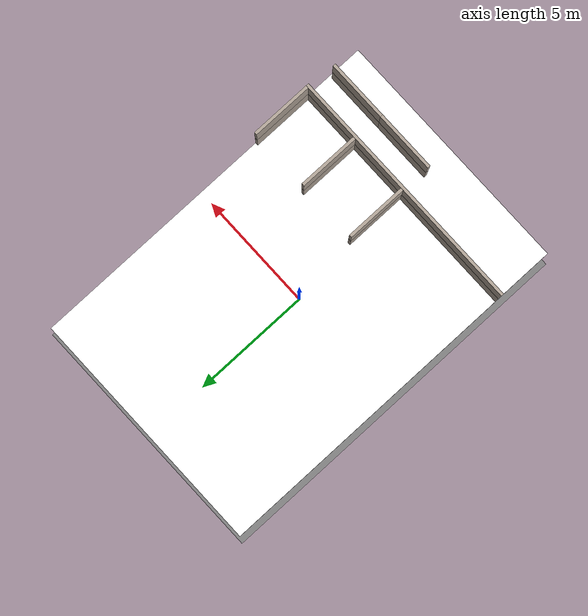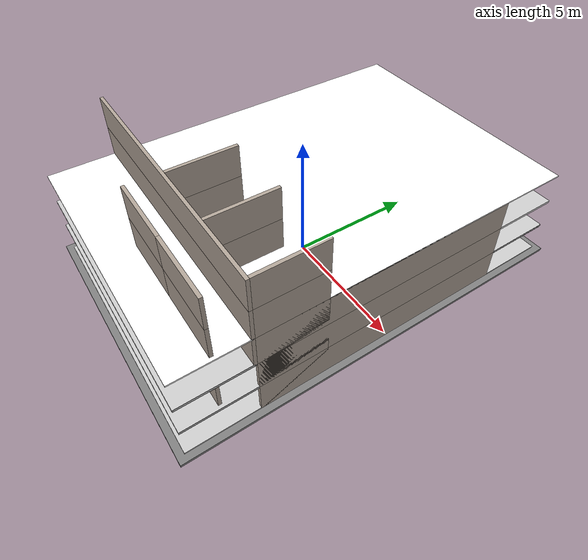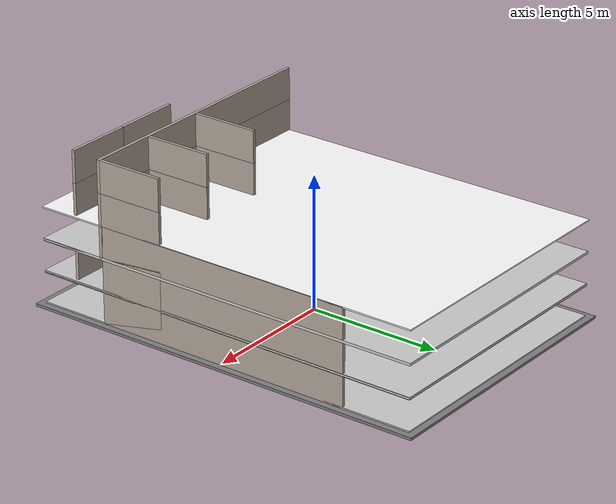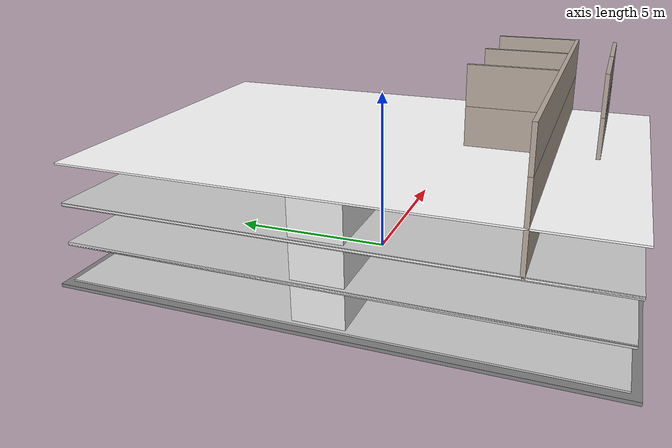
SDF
<sdf version="1.7">
 <model name="HotelBuilding">
  <static>true</static>
  <link name="building_base">
   <pose>0 0 -0.05 0 0 0</pose>
   <visual name="visual">
    <geometry><box><size>10.74 15.74 0.1</size></box></geometry>
    <material><ambient>0.4 0.4 0.4 1</ambient><diffuse>0.5 0.5 0.5 1</diffuse></material>
   </visual>
   <collision name="collision"><geometry><box><size>10.74 15.74 0.1</size></box></geometry></collision>
  </link>
  <link name="floor_base_f0">
   <visual name="visual">
    <geometry><box><size>10.24 15.24 0.1</size></box></geometry>
    <material><ambient>0.7 0.7 0.7 1</ambient><diffuse>0.8 0.8 0.8 1</diffuse></material>
   </visual>
   <collision name="collision">
    <geometry><box><size>10.24 15.24 0.1</size></box></geometry>
    <surface><friction><ode><mu>1.0</mu><mu2>1.0</mu2></ode></friction></surface>
   </collision>
  </link>
  <link name="corridor_f0">
   <pose>0 0 0.6 0 0 0</pose>
   <visual name="visual">
    <geometry><box><size>10.0 1.5 1.2</size></box></geometry>
    <material><ambient>0.85 0.85 0.85 1</ambient><diffuse>0.9 0.9 0.9 1</diffuse></material>
   </visual>
   <collision name="collision">
    <geometry><box><size>10.0 1.5 1.2</size></box></geometry>
    <surface><friction><ode><mu>1.0</mu><mu2>1.0</mu2></ode></friction></surface>
   </collision>
  </link>
  <link name="room_divider_f0_r1">
   <pose>0.06 -3.75 0.6 0 0 0</pose>
   <visual name="visual">
    <geometry><box><size>0.12 2.5 1.2</size></box></geometry>
    <material><ambient>0.6 0.55 0.5 1</ambient><diffuse>0.7 0.65 0.6 1</diffuse></material>
   </visual>
   <collision name="collision"><geometry><box><size>0.12 2.5 1.2</size></box></geometry></collision>
  </link>
  <link name="room_rear_wall_f0_r2">
   <pose>1.25 -6.25 0.6 0 0 0</pose>
   <visual name="visual">
    <geometry><box><size>2.5 0.12 1.2</size></box></geometry>
    <material><ambient>0.6 0.55 0.5 1</ambient><diffuse>0.7 0.65 0.6 1</diffuse></material>
   </visual>
   <collision name="collision"><geometry><box><size>2.5 0.12 1.2</size></box></geometry></collision>
  </link>
  <link name="room_side_wall_f0_r2_right">
   <pose>5.0600000000000005 -3.75 0.6 0 0 0</pose>
   <visual name="visual">
    <geometry><box><size>0.12 2.5 1.2</size></box></geometry>
    <material><ambient>0.6 0.55 0.5 1</ambient><diffuse>0.7 0.65 0.6 1</diffuse></material>
   </visual>
   <collision name="collision"><geometry><box><size>0.12 2.5 1.2</size></box></geometry></collision>
  </link>
  <link name="corridor_right_wall_f0">
   <pose>5.0600000000000005 0 0.6 0 0 0</pose>
   <visual name="visual">
    <geometry><box><size>0.12 10.0 1.2</size></box></geometry>
    <material><ambient>0.6 0.55 0.5 1</ambient><diffuse>0.7 0.65 0.6 1</diffuse></material>
   </visual>
   <collision name="collision"><geometry><box><size>0.12 10.0 1.2</size></box></geometry></collision>
  </link>
  <link name="ceiling_f0">
   <pose>0 0 1.2 0 0 0</pose>
   <visual name="visual">
    <geometry><box><size>10.24 15.24 0.05</size></box></geometry>
    <material><ambient>0.9 0.9 0.9 1</ambient><diffuse>1.0 1.0 1.0 1</diffuse></material>
   </visual>
   <collision name="collision"><geometry><box><size>10.24 15.24 0.05</size></box></geometry></collision>
  </link>
  <link name="floor_base_f1">
   <pose>0 0 1.2 0 0 0</pose>
   <visual name="visual">
    <geometry><box><size>10.24 15.24 0.1</size></box></geometry>
    <material><ambient>0.7 0.7 0.7 1</ambient><diffuse>0.8 0.8 0.8 1</diffuse></material>
   </visual>
   <collision name="collision">
    <geometry><box><size>10.24 15.24 0.1</size></box></geometry>
    <surface><friction><ode><mu>1.0</mu><mu2>1.0</mu2></ode></friction></surface>
   </collision>
  </link>
  <link name="corridor_f1">
   <pose>0 0 1.7999999999999998 0 0 0</pose>
   <visual name="visual">
    <geometry><box><size>10.0 1.5 1.2</size></box></geometry>
    <material><ambient>0.85 0.85 0.85 1</ambient><diffuse>0.9 0.9 0.9 1</diffuse></material>
   </visual>
   <collision name="collision">
    <geometry><box><size>10.0 1.5 1.2</size></box></geometry>
    <surface><friction><ode><mu>1.0</mu><mu2>1.0</mu2></ode></friction></surface>
   </collision>
  </link>
  <link name="room_divider_f1_r1">
   <pose>0.06 -3.75 1.7999999999999998 0 0 0</pose>
   <visual name="visual">
    <geometry><box><size>0.12 2.5 1.2</size></box></geometry>
    <material><ambient>0.6 0.55 0.5 1</ambient><diffuse>0.7 0.65 0.6 1</diffuse></material>
   </visual>
   <collision name="collision"><geometry><box><size>0.12 2.5 1.2</size></box></geometry></collision>
  </link>
  <link name="room_rear_wall_f1_r2">
   <pose>1.25 -6.25 1.7999999999999998 0 0 0</pose>
   <visual name="visual">
    <geometry><box><size>2.5 0.12 1.2</size></box></geometry>
    <material><ambient>0.6 0.55 0.5 1</ambient><diffuse>0.7 0.65 0.6 1</diffuse></material>
   </visual>
   <collision name="collision"><geometry><box><size>2.5 0.12 1.2</size></box></geometry></collision>
  </link>
  <link name="room_divider_f1_r2">
   <pose>2.56 -3.75 1.7999999999999998 0 0 0</pose>
   <visual name="visual">
    <geometry><box><size>0.12 2.5 1.2</size></box></geometry>
    <material><ambient>0.6 0.55 0.5 1</ambient><diffuse>0.7 0.65 0.6 1</diffuse></material>
   </visual>
   <collision name="collision"><geometry><box><size>0.12 2.5 1.2</size></box></geometry></collision>
  </link>
  <link name="room_rear_wall_f1_r3">
   <pose>3.75 -6.25 1.7999999999999998 0 0 0</pose>
   <visual name="visual">
    <geometry><box><size>2.5 0.12 1.2</size></box></geometry>
    <material><ambient>0.6 0.55 0.5 1</ambient><diffuse>0.7 0.65 0.6 1</diffuse></material>
   </visual>
   <collision name="collision"><geometry><box><size>2.5 0.12 1.2</size></box></geometry></collision>
  </link>
  <link name="room_side_wall_f1_r3_right">
   <pose>5.0600000000000005 -3.75 1.7999999999999998 0 0 0</pose>
   <visual name="visual">
    <geometry><box><size>0.12 2.5 1.2</size></box></geometry>
    <material><ambient>0.6 0.55 0.5 1</ambient><diffuse>0.7 0.65 0.6 1</diffuse></material>
   </visual>
   <collision name="collision"><geometry><box><size>0.12 2.5 1.2</size></box></geometry></collision>
  </link>
  <link name="corridor_right_wall_f1">
   <pose>5.0600000000000005 0 1.7999999999999998 0 0 0</pose>
   <visual name="visual">
    <geometry><box><size>0.12 10.0 1.2</size></box></geometry>
    <material><ambient>0.6 0.55 0.5 1</ambient><diffuse>0.7 0.65 0.6 1</diffuse></material>
   </visual>
   <collision name="collision"><geometry><box><size>0.12 10.0 1.2</size></box></geometry></collision>
  </link>
  <link name="ceiling_f1">
   <pose>0 0 2.4 0 0 0</pose>
   <visual name="visual">
    <geometry><box><size>10.24 15.24 0.05</size></box></geometry>
    <material><ambient>0.9 0.9 0.9 1</ambient><diffuse>1.0 1.0 1.0 1</diffuse></material>
   </visual>
   <collision name="collision"><geometry><box><size>10.24 15.24 0.05</size></box></geometry></collision>
  </link>
  <link name="floor_base_f2">
   <pose>0 0 2.4 0 0 0</pose>
   <visual name="visual">
    <geometry><box><size>10.24 15.24 0.1</size></box></geometry>
    <material><ambient>0.7 0.7 0.7 1</ambient><diffuse>0.8 0.8 0.8 1</diffuse></material>
   </visual>
   <collision name="collision">
    <geometry><box><size>10.24 15.24 0.1</size></box></geometry>
    <surface><friction><ode><mu>1.0</mu><mu2>1.0</mu2></ode></friction></surface>
   </collision>
  </link>
  <link name="corridor_f2">
   <pose>0 0 3.0 0 0 0</pose>
   <visual name="visual">
    <geometry><box><size>10.0 1.5 1.2</size></box></geometry>
    <material><ambient>0.85 0.85 0.85 1</ambient><diffuse>0.9 0.9 0.9 1</diffuse></material>
   </visual>
   <collision name="collision">
    <geometry><box><size>10.0 1.5 1.2</size></box></geometry>
    <surface><friction><ode><mu>1.0</mu><mu2>1.0</mu2></ode></friction></surface>
   </collision>
  </link>
  <link name="corridor_rear_wall_f2">
   <pose>0 -5.06 3.0 0 0 0</pose>
   <visual name="visual">
    <geometry><box><size>10.24 0.12 1.2</size></box></geometry>
    <material><ambient>0.6 0.55 0.5 1</ambient><diffuse>0.7 0.65 0.6 1</diffuse></material>
   </visual>
   <collision name="collision"><geometry><box><size>10.24 0.12 1.2</size></box></geometry></collision>
  </link>
  <link name="room_divider_f2_r1">
   <pose>0.06 -3.75 3.0 0 0 0</pose>
   <visual name="visual">
    <geometry><box><size>0.12 2.5 1.2</size></box></geometry>
    <material><ambient>0.6 0.55 0.5 1</ambient><diffuse>0.7 0.65 0.6 1</diffuse></material>
   </visual>
   <collision name="collision"><geometry><box><size>0.12 2.5 1.2</size></box></geometry></collision>
  </link>
  <link name="room_rear_wall_f2_r2">
   <pose>1.25 -6.25 3.0 0 0 0</pose>
   <visual name="visual">
    <geometry><box><size>2.5 0.12 1.2</size></box></geometry>
    <material><ambient>0.6 0.55 0.5 1</ambient><diffuse>0.7 0.65 0.6 1</diffuse></material>
   </visual>
   <collision name="collision"><geometry><box><size>2.5 0.12 1.2</size></box></geometry></collision>
  </link>
  <link name="room_side_wall_f2_r2_right">
   <pose>5.0600000000000005 -3.75 3.0 0 0 0</pose>
   <visual name="visual">
    <geometry><box><size>0.12 2.5 1.2</size></box></geometry>
    <material><ambient>0.6 0.55 0.5 1</ambient><diffuse>0.7 0.65 0.6 1</diffuse></material>
   </visual>
   <collision name="collision"><geometry><box><size>0.12 2.5 1.2</size></box></geometry></collision>
  </link>
  <link name="corridor_right_wall_f2">
   <pose>5.0600000000000005 0 3.0 0 0 0</pose>
   <visual name="visual">
    <geometry><box><size>0.12 10.0 1.2</size></box></geometry>
    <material><ambient>0.6 0.55 0.5 1</ambient><diffuse>0.7 0.65 0.6 1</diffuse></material>
   </visual>
   <collision name="collision"><geometry><box><size>0.12 10.0 1.2</size></box></geometry></collision>
  </link>
  <link name="ceiling_f2">
   <pose>0 0 3.5999999999999996 0 0 0</pose>
   <visual name="visual">
    <geometry><box><size>10.24 15.24 0.05</size></box></geometry>
    <material><ambient>0.9 0.9 0.9 1</ambient><diffuse>1.0 1.0 1.0 1</diffuse></material>
   </visual>
   <collision name="collision"><geometry><box><size>10.24 15.24 0.05</size></box></geometry></collision>
  </link>
  <link name="corridor_rear_wall_f3">
   <pose>0 -5.06 4.199999999999999 0 0 0</pose>
   <visual name="visual">
    <geometry><box><size>10.24 0.12 1.2</size></box></geometry>
    <material><ambient>0.6 0.55 0.5 1</ambient><diffuse>0.7 0.65 0.6 1</diffuse></material>
   </visual>
   <collision name="collision"><geometry><box><size>10.24 0.12 1.2</size></box></geometry></collision>
  </link>
  <link name="room_divider_f3_r1">
   <pose>0.06 -3.75 4.199999999999999 0 0 0</pose>
   <visual name="visual">
    <geometry><box><size>0.12 2.5 1.2</size></box></geometry>
    <material><ambient>0.6 0.55 0.5 1</ambient><diffuse>0.7 0.65 0.6 1</diffuse></material>
   </visual>
   <collision name="collision"><geometry><box><size>0.12 2.5 1.2</size></box></geometry></collision>
  </link>
  <link name="room_rear_wall_f3_r2">
   <pose>1.25 -6.25 4.199999999999999 0 0 0</pose>
   <visual name="visual">
    <geometry><box><size>2.5 0.12 1.2</size></box></geometry>
    <material><ambient>0.6 0.55 0.5 1</ambient><diffuse>0.7 0.65 0.6 1</diffuse></material>
   </visual>
   <collision name="collision"><geometry><box><size>2.5 0.12 1.2</size></box></geometry></collision>
  </link>
  <link name="room_divider_f3_r2">
   <pose>2.56 -3.75 4.199999999999999 0 0 0</pose>
   <visual name="visual">
    <geometry><box><size>0.12 2.5 1.2</size></box></geometry>
    <material><ambient>0.6 0.55 0.5 1</ambient><diffuse>0.7 0.65 0.6 1</diffuse></material>
   </visual>
   <collision name="collision"><geometry><box><size>0.12 2.5 1.2</size></box></geometry></collision>
  </link>
  <link name="room_rear_wall_f3_r3">
   <pose>3.75 -6.25 4.199999999999999 0 0 0</pose>
   <visual name="visual">
    <geometry><box><size>2.5 0.12 1.2</size></box></geometry>
    <material><ambient>0.6 0.55 0.5 1</ambient><diffuse>0.7 0.65 0.6 1</diffuse></material>
   </visual>
   <collision name="collision"><geometry><box><size>2.5 0.12 1.2</size></box></geometry></collision>
  </link>
  <link name="room_side_wall_f3_r3_right">
   <pose>5.0600000000000005 -3.75 4.199999999999999 0 0 0</pose>
   <visual name="visual">
    <geometry><box><size>0.12 2.5 1.2</size></box></geometry>
    <material><ambient>0.6 0.55 0.5 1</ambient><diffuse>0.7 0.65 0.6 1</diffuse></material>
   </visual>
   <collision name="collision"><geometry><box><size>0.12 2.5 1.2</size></box></geometry></collision>
  </link>
  <link name="corridor_rear_wall_f4">
   <pose>0 -5.06 5.3999999999999995 0 0 0</pose>
   <visual name="visual">
    <geometry><box><size>10.24 0.12 1.2</size></box></geometry>
    <material><ambient>0.6 0.55 0.5 1</ambient><diffuse>0.7 0.65 0.6 1</diffuse></material>
   </visual>
   <collision name="collision"><geometry><box><size>10.24 0.12 1.2</size></box></geometry></collision>
  </link>
  <link name="room_divider_f4_r1">
   <pose>0.06 -3.75 5.3999999999999995 0 0 0</pose>
   <visual name="visual">
    <geometry><box><size>0.12 2.5 1.2</size></box></geometry>
    <material><ambient>0.6 0.55 0.5 1</ambient><diffuse>0.7 0.65 0.6 1</diffuse></material>
   </visual>
   <collision name="collision"><geometry><box><size>0.12 2.5 1.2</size></box></geometry></collision>
  </link>
  <link name="room_rear_wall_f4_r2">
   <pose>1.25 -6.25 5.3999999999999995 0 0 0</pose>
   <visual name="visual">
    <geometry><box><size>2.5 0.12 1.2</size></box></geometry>
    <material><ambient>0.6 0.55 0.5 1</ambient><diffuse>0.7 0.65 0.6 1</diffuse></material>
   </visual>
   <collision name="collision"><geometry><box><size>2.5 0.12 1.2</size></box></geometry></collision>
  </link>
  <link name="room_divider_f4_r2">
   <pose>2.56 -3.75 5.3999999999999995 0 0 0</pose>
   <visual name="visual">
    <geometry><box><size>0.12 2.5 1.2</size></box></geometry>
    <material><ambient>0.6 0.55 0.5 1</ambient><diffuse>0.7 0.65 0.6 1</diffuse></material>
   </visual>
   <collision name="collision"><geometry><box><size>0.12 2.5 1.2</size></box></geometry></collision>
  </link>
  <link name="room_rear_wall_f4_r3">
   <pose>3.75 -6.25 5.3999999999999995 0 0 0</pose>
   <visual name="visual">
    <geometry><box><size>2.5 0.12 1.2</size></box></geometry>
    <material><ambient>0.6 0.55 0.5 1</ambient><diffuse>0.7 0.65 0.6 1</diffuse></material>
   </visual>
   <collision name="collision"><geometry><box><size>2.5 0.12 1.2</size></box></geometry></collision>
  </link>
  <link name="room_side_wall_f4_r3_right">
   <pose>5.0600000000000005 -3.75 5.3999999999999995 0 0 0</pose>
   <visual name="visual">
    <geometry><box><size>0.12 2.5 1.2</size></box></geometry>
    <material><ambient>0.6 0.55 0.5 1</ambient><diffuse>0.7 0.65 0.6 1</diffuse></material>
   </visual>
   <collision name="collision"><geometry><box><size>0.12 2.5 1.2</size></box></geometry></collision>
  </link>
 </model>
</sdf>
